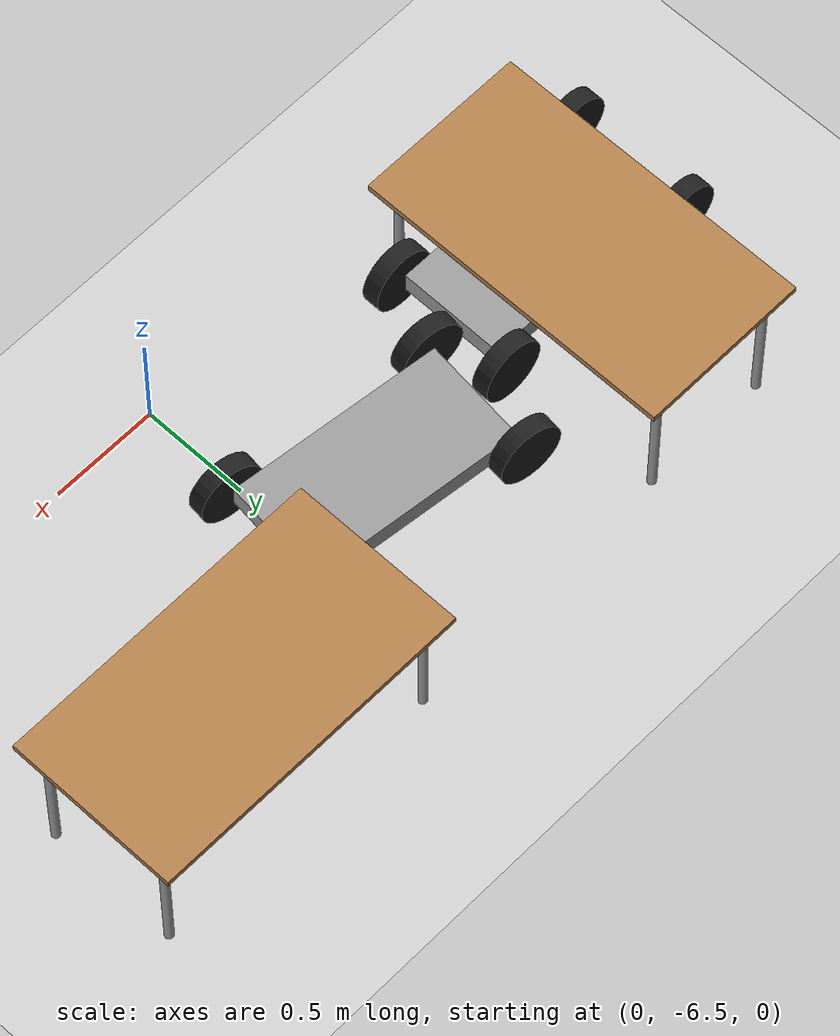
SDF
<sdf version="1.6">
 <world name="default">
  <model name="ground_plane">
   <static>1</static>
   <link name="link">
    <collision name="collision">
     <geometry><plane><normal>0 0 1</normal><size>100 100</size></plane></geometry>
     <surface>
      <contact><collide_bitmask>65535</collide_bitmask></contact>
      <friction><ode><mu>100</mu><mu2>50</mu2></ode></friction>
     </surface>
    </collision>
    <visual name="visual">
     <cast_shadows>0</cast_shadows>
     <geometry><plane><normal>0 0 1</normal><size>100 100</size></plane></geometry>
     <material>
      <script><uri>file://media/materials/scripts/gazebo.material</uri><name>Gazebo/Grey</name></script>
     </material>
    </visual>
   </link>
  </model>
  <model name="table_2">
   <link name="link">
    <pose>0 0 0 0 -0 1.57</pose>
    <visual name="visual1">
     <pose>0 0 0.67 0 -0 0</pose>
     <geometry><box><size>1.5 0.8 0.03</size></box></geometry>
     <material>
      <script><uri>file://media/materials/scripts/gazebo.material</uri><name>Gazebo/Wood</name></script>
     </material>
    </visual>
    <visual name="front_left_leg">
     <pose>0.68 0.3 0.335 0 -0 0</pose>
     <geometry><cylinder><radius>0.02</radius><length>0.67</length></cylinder></geometry>
     <material>
      <script><uri>file://media/materials/scripts/gazebo.material</uri><name>Gazebo/Grey</name></script>
     </material>
    </visual>
    <visual name="front_right_leg">
     <pose>0.68 -0.3 0.335 0 -0 0</pose>
     <geometry><cylinder><radius>0.02</radius><length>0.67</length></cylinder></geometry>
     <material>
      <script><uri>file://media/materials/scripts/gazebo.material</uri><name>Gazebo/Grey</name></script>
     </material>
    </visual>
    <visual name="back_right_leg">
     <pose>-0.68 -0.3 0.335 0 -0 0</pose>
     <geometry><cylinder><radius>0.02</radius><length>0.67</length></cylinder></geometry>
     <material>
      <script><uri>file://media/materials/scripts/gazebo.material</uri><name>Gazebo/Grey</name></script>
     </material>
    </visual>
    <visual name="back_left_leg">
     <pose>-0.68 0.3 0.335 0 -0 0</pose>
     <geometry><cylinder><radius>0.02</radius><length>0.67</length></cylinder></geometry>
     <material>
      <script><uri>file://media/materials/scripts/gazebo.material</uri><name>Gazebo/Grey</name></script>
     </material>
    </visual>
    <collision name="surface">
     <pose>0 0 0.67 0 -0 0</pose>
     <geometry><box><size>1.5 0.8 0.03</size></box></geometry>
     <surface>
      <friction>
       <ode><mu>0.6</mu><mu2>0.6</mu2><fdir1>0 0 0</fdir1><slip1>0</slip1><slip2>0</slip2></ode>
       <torsional>
        <coefficient>1</coefficient>
        <patch_radius>0</patch_radius>
        <surface_radius>0</surface_radius>
        <use_patch_radius>1</use_patch_radius>
        <ode><slip>0</slip></ode>
       </torsional>
      </friction>
      <bounce><restitution_coefficient>0</restitution_coefficient><threshold>1e+06</threshold></bounce>
      <contact>
       <collide_without_contact>0</collide_without_contact>
       <collide_without_contact_bitmask>1</collide_without_contact_bitmask>
       <collide_bitmask>1</collide_bitmask>
       <ode>
        <soft_cfm>0</soft_cfm>
        <soft_erp>0.2</soft_erp>
        <kp>1e+13</kp>
        <kd>1</kd>
        <max_vel>0.01</max_vel>
        <min_depth>0</min_depth>
       </ode>
       <bullet>
        <split_impulse>1</split_impulse>
        <split_impulse_penetration_threshold>-0.01</split_impulse_penetration_threshold>
        <soft_cfm>0</soft_cfm>
        <soft_erp>0.2</soft_erp>
        <kp>1e+13</kp>
        <kd>1</kd>
       </bullet>
      </contact>
     </surface>
    </collision>
    <collision name="front_left_leg">
     <pose>0.68 0.3 0.335 0 -0 0</pose>
     <geometry><cylinder><radius>0.02</radius><length>0.67</length></cylinder></geometry>
     <surface>
      <friction>
       <ode><mu>1</mu><mu2>1</mu2><fdir1>0 0 0</fdir1><slip1>0</slip1><slip2>0</slip2></ode>
       <torsional>
        <coefficient>1</coefficient>
        <patch_radius>0</patch_radius>
        <surface_radius>0</surface_radius>
        <use_patch_radius>1</use_patch_radius>
        <ode><slip>0</slip></ode>
       </torsional>
      </friction>
      <bounce><restitution_coefficient>0</restitution_coefficient><threshold>1e+06</threshold></bounce>
      <contact>
       <collide_without_contact>0</collide_without_contact>
       <collide_without_contact_bitmask>1</collide_without_contact_bitmask>
       <collide_bitmask>1</collide_bitmask>
       <ode>
        <soft_cfm>0</soft_cfm>
        <soft_erp>0.2</soft_erp>
        <kp>1e+13</kp>
        <kd>1</kd>
        <max_vel>0.01</max_vel>
        <min_depth>0</min_depth>
       </ode>
       <bullet>
        <split_impulse>1</split_impulse>
        <split_impulse_penetration_threshold>-0.01</split_impulse_penetration_threshold>
        <soft_cfm>0</soft_cfm>
        <soft_erp>0.2</soft_erp>
        <kp>1e+13</kp>
        <kd>1</kd>
       </bullet>
      </contact>
     </surface>
    </collision>
    <collision name="front_right_leg">
     <pose>0.68 -0.3 0.335 0 -0 0</pose>
     <geometry><cylinder><radius>0.02</radius><length>0.67</length></cylinder></geometry>
     <surface>
      <friction>
       <ode><mu>1</mu><mu2>1</mu2><fdir1>0 0 0</fdir1><slip1>0</slip1><slip2>0</slip2></ode>
       <torsional>
        <coefficient>1</coefficient>
        <patch_radius>0</patch_radius>
        <surface_radius>0</surface_radius>
        <use_patch_radius>1</use_patch_radius>
        <ode><slip>0</slip></ode>
       </torsional>
      </friction>
      <bounce><restitution_coefficient>0</restitution_coefficient><threshold>1e+06</threshold></bounce>
      <contact>
       <collide_without_contact>0</collide_without_contact>
       <collide_without_contact_bitmask>1</collide_without_contact_bitmask>
       <collide_bitmask>1</collide_bitmask>
       <ode>
        <soft_cfm>0</soft_cfm>
        <soft_erp>0.2</soft_erp>
        <kp>1e+13</kp>
        <kd>1</kd>
        <max_vel>0.01</max_vel>
        <min_depth>0</min_depth>
       </ode>
       <bullet>
        <split_impulse>1</split_impulse>
        <split_impulse_penetration_threshold>-0.01</split_impulse_penetration_threshold>
        <soft_cfm>0</soft_cfm>
        <soft_erp>0.2</soft_erp>
        <kp>1e+13</kp>
        <kd>1</kd>
       </bullet>
      </contact>
     </surface>
    </collision>
    <collision name="back_right_leg">
     <pose>-0.68 -0.3 0.335 0 -0 0</pose>
     <geometry><cylinder><radius>0.02</radius><length>0.67</length></cylinder></geometry>
     <surface>
      <friction>
       <ode><mu>1</mu><mu2>1</mu2><fdir1>0 0 0</fdir1><slip1>0</slip1><slip2>0</slip2></ode>
       <torsional>
        <coefficient>1</coefficient>
        <patch_radius>0</patch_radius>
        <surface_radius>0</surface_radius>
        <use_patch_radius>1</use_patch_radius>
        <ode><slip>0</slip></ode>
       </torsional>
      </friction>
      <bounce><restitution_coefficient>0</restitution_coefficient><threshold>1e+06</threshold></bounce>
      <contact>
       <collide_without_contact>0</collide_without_contact>
       <collide_without_contact_bitmask>1</collide_without_contact_bitmask>
       <collide_bitmask>1</collide_bitmask>
       <ode>
        <soft_cfm>0</soft_cfm>
        <soft_erp>0.2</soft_erp>
        <kp>1e+13</kp>
        <kd>1</kd>
        <max_vel>0.01</max_vel>
        <min_depth>0</min_depth>
       </ode>
       <bullet>
        <split_impulse>1</split_impulse>
        <split_impulse_penetration_threshold>-0.01</split_impulse_penetration_threshold>
        <soft_cfm>0</soft_cfm>
        <soft_erp>0.2</soft_erp>
        <kp>1e+13</kp>
        <kd>1</kd>
       </bullet>
      </contact>
     </surface>
    </collision>
    <collision name="back_left_leg">
     <pose>-0.68 0.3 0.335 0 -0 0</pose>
     <geometry><cylinder><radius>0.02</radius><length>0.67</length></cylinder></geometry>
     <surface>
      <friction>
       <ode><mu>1</mu><mu2>1</mu2><fdir1>0 0 0</fdir1><slip1>0</slip1><slip2>0</slip2></ode>
       <torsional>
        <coefficient>1</coefficient>
        <patch_radius>0</patch_radius>
        <surface_radius>0</surface_radius>
        <use_patch_radius>1</use_patch_radius>
        <ode><slip>0</slip></ode>
       </torsional>
      </friction>
      <bounce><restitution_coefficient>0</restitution_coefficient><threshold>1e+06</threshold></bounce>
      <contact>
       <collide_without_contact>0</collide_without_contact>
       <collide_without_contact_bitmask>1</collide_without_contact_bitmask>
       <collide_bitmask>1</collide_bitmask>
       <ode>
        <soft_cfm>0</soft_cfm>
        <soft_erp>0.2</soft_erp>
        <kp>1e+13</kp>
        <kd>1</kd>
        <max_vel>0.01</max_vel>
        <min_depth>0</min_depth>
       </ode>
       <bullet>
        <split_impulse>1</split_impulse>
        <split_impulse_penetration_threshold>-0.01</split_impulse_penetration_threshold>
        <soft_cfm>0</soft_cfm>
        <soft_erp>0.2</soft_erp>
        <kp>1e+13</kp>
        <kd>1</kd>
       </bullet>
      </contact>
     </surface>
    </collision>
   </link>
   <static>1</static>
   <pose>-1.43955 -5.563 0 0 -0 0</pose>
  </model>
  <model name="table_5">
   <link name="link">
    <visual name="visual1">
     <pose>0 0 0.67 0 -0 0</pose>
     <geometry><box><size>1.5 0.8 0.03</size></box></geometry>
     <material>
      <script><uri>file://media/materials/scripts/gazebo.material</uri><name>Gazebo/Wood</name></script>
     </material>
    </visual>
    <visual name="front_left_leg">
     <pose>0.68 0.3 0.335 0 -0 0</pose>
     <geometry><cylinder><radius>0.02</radius><length>0.67</length></cylinder></geometry>
     <material>
      <script><uri>file://media/materials/scripts/gazebo.material</uri><name>Gazebo/Grey</name></script>
     </material>
    </visual>
    <visual name="front_right_leg">
     <pose>0.68 -0.3 0.335 0 -0 0</pose>
     <geometry><cylinder><radius>0.02</radius><length>0.67</length></cylinder></geometry>
     <material>
      <script><uri>file://media/materials/scripts/gazebo.material</uri><name>Gazebo/Grey</name></script>
     </material>
    </visual>
    <visual name="back_right_leg">
     <pose>-0.68 -0.3 0.335 0 -0 0</pose>
     <geometry><cylinder><radius>0.02</radius><length>0.67</length></cylinder></geometry>
     <material>
      <script><uri>file://media/materials/scripts/gazebo.material</uri><name>Gazebo/Grey</name></script>
     </material>
    </visual>
    <visual name="back_left_leg">
     <pose>-0.68 0.3 0.335 0 -0 0</pose>
     <geometry><cylinder><radius>0.02</radius><length>0.67</length></cylinder></geometry>
     <material>
      <script><uri>file://media/materials/scripts/gazebo.material</uri><name>Gazebo/Grey</name></script>
     </material>
    </visual>
    <collision name="surface">
     <pose>0 0 0.67 0 -0 0</pose>
     <geometry><box><size>1.5 0.8 0.03</size></box></geometry>
     <surface>
      <friction>
       <ode><mu>0.6</mu><mu2>0.6</mu2><fdir1>0 0 0</fdir1><slip1>0</slip1><slip2>0</slip2></ode>
       <torsional>
        <coefficient>1</coefficient>
        <patch_radius>0</patch_radius>
        <surface_radius>0</surface_radius>
        <use_patch_radius>1</use_patch_radius>
        <ode><slip>0</slip></ode>
       </torsional>
      </friction>
      <bounce><restitution_coefficient>0</restitution_coefficient><threshold>1e+06</threshold></bounce>
      <contact>
       <collide_without_contact>0</collide_without_contact>
       <collide_without_contact_bitmask>1</collide_without_contact_bitmask>
       <collide_bitmask>1</collide_bitmask>
       <ode>
        <soft_cfm>0</soft_cfm>
        <soft_erp>0.2</soft_erp>
        <kp>1e+13</kp>
        <kd>1</kd>
        <max_vel>0.01</max_vel>
        <min_depth>0</min_depth>
       </ode>
       <bullet>
        <split_impulse>1</split_impulse>
        <split_impulse_penetration_threshold>-0.01</split_impulse_penetration_threshold>
        <soft_cfm>0</soft_cfm>
        <soft_erp>0.2</soft_erp>
        <kp>1e+13</kp>
        <kd>1</kd>
       </bullet>
      </contact>
     </surface>
    </collision>
    <collision name="front_left_leg">
     <pose>0.68 0.3 0.335 0 -0 0</pose>
     <geometry><cylinder><radius>0.02</radius><length>0.67</length></cylinder></geometry>
     <surface>
      <friction>
       <ode><mu>1</mu><mu2>1</mu2><fdir1>0 0 0</fdir1><slip1>0</slip1><slip2>0</slip2></ode>
       <torsional>
        <coefficient>1</coefficient>
        <patch_radius>0</patch_radius>
        <surface_radius>0</surface_radius>
        <use_patch_radius>1</use_patch_radius>
        <ode><slip>0</slip></ode>
       </torsional>
      </friction>
      <bounce><restitution_coefficient>0</restitution_coefficient><threshold>1e+06</threshold></bounce>
      <contact>
       <collide_without_contact>0</collide_without_contact>
       <collide_without_contact_bitmask>1</collide_without_contact_bitmask>
       <collide_bitmask>1</collide_bitmask>
       <ode>
        <soft_cfm>0</soft_cfm>
        <soft_erp>0.2</soft_erp>
        <kp>1e+13</kp>
        <kd>1</kd>
        <max_vel>0.01</max_vel>
        <min_depth>0</min_depth>
       </ode>
       <bullet>
        <split_impulse>1</split_impulse>
        <split_impulse_penetration_threshold>-0.01</split_impulse_penetration_threshold>
        <soft_cfm>0</soft_cfm>
        <soft_erp>0.2</soft_erp>
        <kp>1e+13</kp>
        <kd>1</kd>
       </bullet>
      </contact>
     </surface>
    </collision>
    <collision name="front_right_leg">
     <pose>0.68 -0.3 0.335 0 -0 0</pose>
     <geometry><cylinder><radius>0.02</radius><length>0.67</length></cylinder></geometry>
     <surface>
      <friction>
       <ode><mu>1</mu><mu2>1</mu2><fdir1>0 0 0</fdir1><slip1>0</slip1><slip2>0</slip2></ode>
       <torsional>
        <coefficient>1</coefficient>
        <patch_radius>0</patch_radius>
        <surface_radius>0</surface_radius>
        <use_patch_radius>1</use_patch_radius>
        <ode><slip>0</slip></ode>
       </torsional>
      </friction>
      <bounce><restitution_coefficient>0</restitution_coefficient><threshold>1e+06</threshold></bounce>
      <contact>
       <collide_without_contact>0</collide_without_contact>
       <collide_without_contact_bitmask>1</collide_without_contact_bitmask>
       <collide_bitmask>1</collide_bitmask>
       <ode>
        <soft_cfm>0</soft_cfm>
        <soft_erp>0.2</soft_erp>
        <kp>1e+13</kp>
        <kd>1</kd>
        <max_vel>0.01</max_vel>
        <min_depth>0</min_depth>
       </ode>
       <bullet>
        <split_impulse>1</split_impulse>
        <split_impulse_penetration_threshold>-0.01</split_impulse_penetration_threshold>
        <soft_cfm>0</soft_cfm>
        <soft_erp>0.2</soft_erp>
        <kp>1e+13</kp>
        <kd>1</kd>
       </bullet>
      </contact>
     </surface>
    </collision>
    <collision name="back_right_leg">
     <pose>-0.68 -0.3 0.335 0 -0 0</pose>
     <geometry><cylinder><radius>0.02</radius><length>0.67</length></cylinder></geometry>
     <surface>
      <friction>
       <ode><mu>1</mu><mu2>1</mu2><fdir1>0 0 0</fdir1><slip1>0</slip1><slip2>0</slip2></ode>
       <torsional>
        <coefficient>1</coefficient>
        <patch_radius>0</patch_radius>
        <surface_radius>0</surface_radius>
        <use_patch_radius>1</use_patch_radius>
        <ode><slip>0</slip></ode>
       </torsional>
      </friction>
      <bounce><restitution_coefficient>0</restitution_coefficient><threshold>1e+06</threshold></bounce>
      <contact>
       <collide_without_contact>0</collide_without_contact>
       <collide_without_contact_bitmask>1</collide_without_contact_bitmask>
       <collide_bitmask>1</collide_bitmask>
       <ode>
        <soft_cfm>0</soft_cfm>
        <soft_erp>0.2</soft_erp>
        <kp>1e+13</kp>
        <kd>1</kd>
        <max_vel>0.01</max_vel>
        <min_depth>0</min_depth>
       </ode>
       <bullet>
        <split_impulse>1</split_impulse>
        <split_impulse_penetration_threshold>-0.01</split_impulse_penetration_threshold>
        <soft_cfm>0</soft_cfm>
        <soft_erp>0.2</soft_erp>
        <kp>1e+13</kp>
        <kd>1</kd>
       </bullet>
      </contact>
     </surface>
    </collision>
    <collision name="back_left_leg">
     <pose>-0.68 0.3 0.335 0 -0 0</pose>
     <geometry><cylinder><radius>0.02</radius><length>0.67</length></cylinder></geometry>
     <surface>
      <friction>
       <ode><mu>1</mu><mu2>1</mu2><fdir1>0 0 0</fdir1><slip1>0</slip1><slip2>0</slip2></ode>
       <torsional>
        <coefficient>1</coefficient>
        <patch_radius>0</patch_radius>
        <surface_radius>0</surface_radius>
        <use_patch_radius>1</use_patch_radius>
        <ode><slip>0</slip></ode>
       </torsional>
      </friction>
      <bounce><restitution_coefficient>0</restitution_coefficient><threshold>1e+06</threshold></bounce>
      <contact>
       <collide_without_contact>0</collide_without_contact>
       <collide_without_contact_bitmask>1</collide_without_contact_bitmask>
       <collide_bitmask>1</collide_bitmask>
       <ode>
        <soft_cfm>0</soft_cfm>
        <soft_erp>0.2</soft_erp>
        <kp>1e+13</kp>
        <kd>1</kd>
        <max_vel>0.01</max_vel>
        <min_depth>0</min_depth>
       </ode>
       <bullet>
        <split_impulse>1</split_impulse>
        <split_impulse_penetration_threshold>-0.01</split_impulse_penetration_threshold>
        <soft_cfm>0</soft_cfm>
        <soft_erp>0.2</soft_erp>
        <kp>1e+13</kp>
        <kd>1</kd>
       </bullet>
      </contact>
     </surface>
    </collision>
   </link>
   <static>1</static>
   <pose>0.848855 -5.1609 0 0 -0 0</pose>
  </model>
  <model name="cart_front_steer">
   <link name="chassis">
    <pose>0 0 0.15 0 -0 0</pose>
    <inertial>
     <pose>0.1 0 0 0 -0 0</pose>
     <mass>10</mass>
     <inertia>
      <ixx>0.216667</ixx>
      <iyy>0.841667</iyy>
      <izz>1.04167</izz>
      <ixy>0</ixy>
      <ixz>0</ixz>
      <iyz>0</iyz>
     </inertia>
    </inertial>
    <collision name="collision"><geometry><box><size>1 0.5 0.1</size></box></geometry></collision>
    <visual name="visual">
     <geometry><box><size>1 0.5 0.1</size></box></geometry>
     <material>
      <script><uri>file://media/materials/scripts/gazebo.material</uri><name>Gazebo/Grey</name></script>
     </material>
    </visual>
   </link>
   <link name="wheel_front_left">
    <pose>0.5 0.298 0.15 -1.5708 -0.087266 0</pose>
    <inertial>
     <mass>0.5</mass>
     <inertia>
      <ixx>0.00307917</ixx>
      <iyy>0.00307917</iyy>
      <izz>0.005625</izz>
      <ixy>0</ixy>
      <ixz>0</ixz>
      <iyz>0</iyz>
     </inertia>
    </inertial>
    <collision name="collision">
     <geometry><cylinder><radius>0.15</radius><length>0.08</length></cylinder></geometry>
    </collision>
    <visual name="visual">
     <geometry><cylinder><radius>0.15</radius><length>0.08</length></cylinder></geometry>
     <material>
      <script><uri>file://media/materials/scripts/gazebo.material</uri><name>Gazebo/Black</name></script>
     </material>
    </visual>
   </link>
   <joint name="wheel_front_left_steer_spin" type="universal">
    <parent>chassis</parent>
    <child>wheel_front_left</child>
    <axis>
     <xyz>0 -1 0</xyz>
     <limit><lower>-0.610865</lower><upper>0.610865</upper></limit>
     <use_parent_model_frame>0</use_parent_model_frame>
     <dynamics><spring_reference>0</spring_reference><spring_stiffness>0</spring_stiffness></dynamics>
    </axis>
    <axis2>
     <xyz>0 0 1</xyz>
     <use_parent_model_frame>0</use_parent_model_frame>
     <dynamics><spring_reference>0</spring_reference><spring_stiffness>0</spring_stiffness></dynamics>
    </axis2>
   </joint>
   <link name="wheel_front_right">
    <pose>0.5 -0.298 0.15 -1.5708 -0.087266 0</pose>
    <inertial>
     <mass>0.5</mass>
     <inertia>
      <ixx>0.00307917</ixx>
      <iyy>0.00307917</iyy>
      <izz>0.005625</izz>
      <ixy>0</ixy>
      <ixz>0</ixz>
      <iyz>0</iyz>
     </inertia>
    </inertial>
    <collision name="collision">
     <geometry><cylinder><radius>0.15</radius><length>0.08</length></cylinder></geometry>
    </collision>
    <visual name="visual">
     <geometry><cylinder><radius>0.15</radius><length>0.08</length></cylinder></geometry>
     <material>
      <script><uri>file://media/materials/scripts/gazebo.material</uri><name>Gazebo/Black</name></script>
     </material>
    </visual>
   </link>
   <joint name="wheel_front_right_steer_spin" type="universal">
    <parent>chassis</parent>
    <child>wheel_front_right</child>
    <axis>
     <xyz>0 -1 0</xyz>
     <limit><lower>-0.610865</lower><upper>0.610865</upper></limit>
     <use_parent_model_frame>0</use_parent_model_frame>
     <dynamics><spring_reference>0</spring_reference><spring_stiffness>0</spring_stiffness></dynamics>
    </axis>
    <axis2>
     <xyz>0 0 1</xyz>
     <use_parent_model_frame>0</use_parent_model_frame>
     <dynamics><spring_reference>0</spring_reference><spring_stiffness>0</spring_stiffness></dynamics>
    </axis2>
   </joint>
   <link name="wheel_rear_left">
    <pose>-0.5 0.298 0.15 -1.5708 0 0</pose>
    <inertial>
     <mass>0.5</mass>
     <inertia>
      <ixx>0.00307917</ixx>
      <iyy>0.00307917</iyy>
      <izz>0.005625</izz>
      <ixy>0</ixy>
      <ixz>0</ixz>
      <iyz>0</iyz>
     </inertia>
    </inertial>
    <collision name="collision">
     <geometry><cylinder><radius>0.15</radius><length>0.08</length></cylinder></geometry>
    </collision>
    <visual name="visual">
     <geometry><cylinder><radius>0.15</radius><length>0.08</length></cylinder></geometry>
     <material>
      <script><uri>file://media/materials/scripts/gazebo.material</uri><name>Gazebo/Black</name></script>
     </material>
    </visual>
   </link>
   <joint name="wheel_rear_left_spin" type="revolute">
    <parent>chassis</parent>
    <child>wheel_rear_left</child>
    <axis>
     <xyz>0 0 1</xyz>
     <use_parent_model_frame>0</use_parent_model_frame>
     <limit><lower>-1e+16</lower><upper>1e+16</upper></limit>
     <dynamics><spring_reference>0</spring_reference><spring_stiffness>0</spring_stiffness></dynamics>
    </axis>
   </joint>
   <link name="wheel_rear_right">
    <pose>-0.5 -0.298 0.15 -1.5708 0 0</pose>
    <inertial>
     <mass>0.5</mass>
     <inertia>
      <ixx>0.00307917</ixx>
      <iyy>0.00307917</iyy>
      <izz>0.005625</izz>
      <ixy>0</ixy>
      <ixz>0</ixz>
      <iyz>0</iyz>
     </inertia>
    </inertial>
    <collision name="collision">
     <geometry><cylinder><radius>0.15</radius><length>0.08</length></cylinder></geometry>
    </collision>
    <visual name="visual">
     <geometry><cylinder><radius>0.15</radius><length>0.08</length></cylinder></geometry>
     <material>
      <script><uri>file://media/materials/scripts/gazebo.material</uri><name>Gazebo/Black</name></script>
     </material>
    </visual>
   </link>
   <joint name="wheel_rear_right_spin" type="revolute">
    <parent>chassis</parent>
    <child>wheel_rear_right</child>
    <axis>
     <xyz>0 0 1</xyz>
     <use_parent_model_frame>0</use_parent_model_frame>
     <limit><lower>-1e+16</lower><upper>1e+16</upper></limit>
     <dynamics><spring_reference>0</spring_reference><spring_stiffness>0</spring_stiffness></dynamics>
    </axis>
   </joint>
   <pose>-0.375808 -5.63517 1e-06 2e-06 -1e-06 -0.119441</pose>
  </model>
  <model name="cart_front_steer_0">
   <link name="chassis">
    <pose>0 0 0.15 0 -0 0</pose>
    <inertial>
     <pose>0.1 0 0 0 -0 0</pose>
     <mass>10</mass>
     <inertia>
      <ixx>0.216667</ixx>
      <iyy>0.841667</iyy>
      <izz>1.04167</izz>
      <ixy>0</ixy>
      <ixz>0</ixz>
      <iyz>0</iyz>
     </inertia>
    </inertial>
    <collision name="collision"><geometry><box><size>1 0.5 0.1</size></box></geometry></collision>
    <visual name="visual">
     <geometry><box><size>1 0.5 0.1</size></box></geometry>
     <material>
      <script><uri>file://media/materials/scripts/gazebo.material</uri><name>Gazebo/Grey</name></script>
     </material>
    </visual>
   </link>
   <link name="wheel_front_left">
    <pose>0.5 0.298 0.15 -1.5708 -0.087266 0</pose>
    <inertial>
     <mass>0.5</mass>
     <inertia>
      <ixx>0.00307917</ixx>
      <iyy>0.00307917</iyy>
      <izz>0.005625</izz>
      <ixy>0</ixy>
      <ixz>0</ixz>
      <iyz>0</iyz>
     </inertia>
    </inertial>
    <collision name="collision">
     <geometry><cylinder><radius>0.15</radius><length>0.08</length></cylinder></geometry>
    </collision>
    <visual name="visual">
     <geometry><cylinder><radius>0.15</radius><length>0.08</length></cylinder></geometry>
     <material>
      <script><uri>file://media/materials/scripts/gazebo.material</uri><name>Gazebo/Black</name></script>
     </material>
    </visual>
   </link>
   <joint name="wheel_front_left_steer_spin" type="universal">
    <parent>chassis</parent>
    <child>wheel_front_left</child>
    <axis>
     <xyz>0 -1 0</xyz>
     <limit><lower>-0.610865</lower><upper>0.610865</upper></limit>
     <use_parent_model_frame>0</use_parent_model_frame>
     <dynamics><spring_reference>0</spring_reference><spring_stiffness>0</spring_stiffness></dynamics>
    </axis>
    <axis2>
     <xyz>0 0 1</xyz>
     <use_parent_model_frame>0</use_parent_model_frame>
     <dynamics><spring_reference>0</spring_reference><spring_stiffness>0</spring_stiffness></dynamics>
    </axis2>
   </joint>
   <link name="wheel_front_right">
    <pose>0.5 -0.298 0.15 -1.5708 -0.087266 0</pose>
    <inertial>
     <mass>0.5</mass>
     <inertia>
      <ixx>0.00307917</ixx>
      <iyy>0.00307917</iyy>
      <izz>0.005625</izz>
      <ixy>0</ixy>
      <ixz>0</ixz>
      <iyz>0</iyz>
     </inertia>
    </inertial>
    <collision name="collision">
     <geometry><cylinder><radius>0.15</radius><length>0.08</length></cylinder></geometry>
    </collision>
    <visual name="visual">
     <geometry><cylinder><radius>0.15</radius><length>0.08</length></cylinder></geometry>
     <material>
      <script><uri>file://media/materials/scripts/gazebo.material</uri><name>Gazebo/Black</name></script>
     </material>
    </visual>
   </link>
   <joint name="wheel_front_right_steer_spin" type="universal">
    <parent>chassis</parent>
    <child>wheel_front_right</child>
    <axis>
     <xyz>0 -1 0</xyz>
     <limit><lower>-0.610865</lower><upper>0.610865</upper></limit>
     <use_parent_model_frame>0</use_parent_model_frame>
     <dynamics><spring_reference>0</spring_reference><spring_stiffness>0</spring_stiffness></dynamics>
    </axis>
    <axis2>
     <xyz>0 0 1</xyz>
     <use_parent_model_frame>0</use_parent_model_frame>
     <dynamics><spring_reference>0</spring_reference><spring_stiffness>0</spring_stiffness></dynamics>
    </axis2>
   </joint>
   <link name="wheel_rear_left">
    <pose>-0.5 0.298 0.15 -1.5708 0 0</pose>
    <inertial>
     <mass>0.5</mass>
     <inertia>
      <ixx>0.00307917</ixx>
      <iyy>0.00307917</iyy>
      <izz>0.005625</izz>
      <ixy>0</ixy>
      <ixz>0</ixz>
      <iyz>0</iyz>
     </inertia>
    </inertial>
    <collision name="collision">
     <geometry><cylinder><radius>0.15</radius><length>0.08</length></cylinder></geometry>
    </collision>
    <visual name="visual">
     <geometry><cylinder><radius>0.15</radius><length>0.08</length></cylinder></geometry>
     <material>
      <script><uri>file://media/materials/scripts/gazebo.material</uri><name>Gazebo/Black</name></script>
     </material>
    </visual>
   </link>
   <joint name="wheel_rear_left_spin" type="revolute">
    <parent>chassis</parent>
    <child>wheel_rear_left</child>
    <axis>
     <xyz>0 0 1</xyz>
     <use_parent_model_frame>0</use_parent_model_frame>
     <limit><lower>-1e+16</lower><upper>1e+16</upper></limit>
     <dynamics><spring_reference>0</spring_reference><spring_stiffness>0</spring_stiffness></dynamics>
    </axis>
   </joint>
   <link name="wheel_rear_right">
    <pose>-0.5 -0.298 0.15 -1.5708 0 0</pose>
    <inertial>
     <mass>0.5</mass>
     <inertia>
      <ixx>0.00307917</ixx>
      <iyy>0.00307917</iyy>
      <izz>0.005625</izz>
      <ixy>0</ixy>
      <ixz>0</ixz>
      <iyz>0</iyz>
     </inertia>
    </inertial>
    <collision name="collision">
     <geometry><cylinder><radius>0.15</radius><length>0.08</length></cylinder></geometry>
    </collision>
    <visual name="visual">
     <geometry><cylinder><radius>0.15</radius><length>0.08</length></cylinder></geometry>
     <material>
      <script><uri>file://media/materials/scripts/gazebo.material</uri><name>Gazebo/Black</name></script>
     </material>
    </visual>
   </link>
   <joint name="wheel_rear_right_spin" type="revolute">
    <parent>chassis</parent>
    <child>wheel_rear_right</child>
    <axis>
     <xyz>0 0 1</xyz>
     <use_parent_model_frame>0</use_parent_model_frame>
     <limit><lower>-1e+16</lower><upper>1e+16</upper></limit>
     <dynamics><spring_reference>0</spring_reference><spring_stiffness>0</spring_stiffness></dynamics>
    </axis>
   </joint>
   <pose>-1.56139 -5.88243 2e-06 0 -0 -0.006679</pose>
  </model>
 </world>
</sdf>
